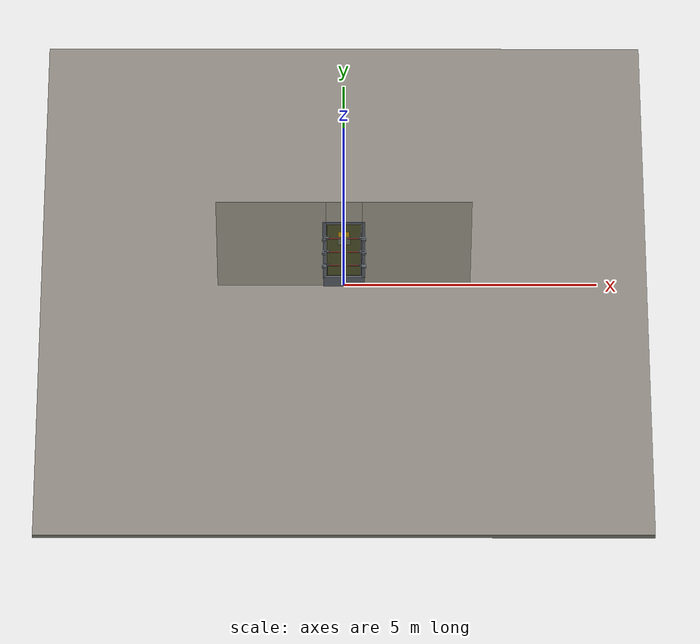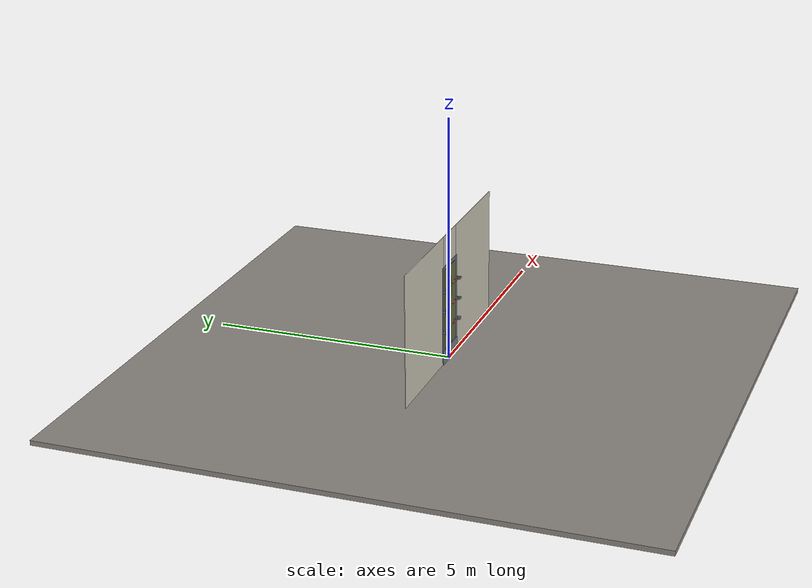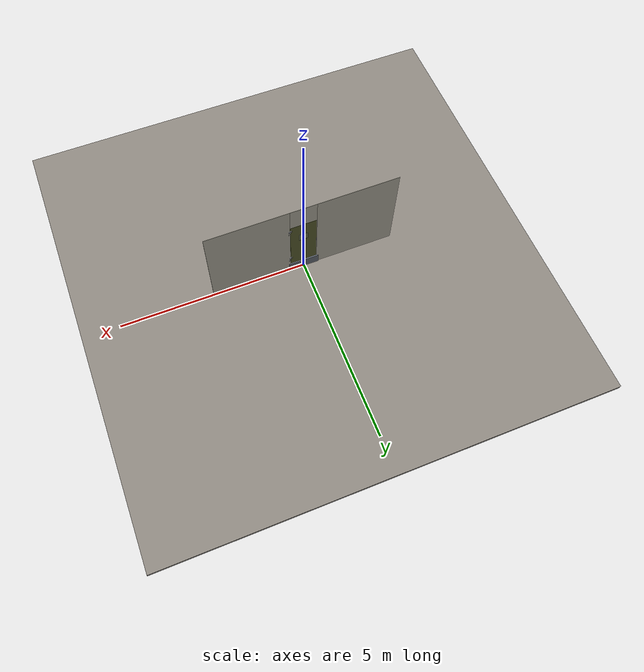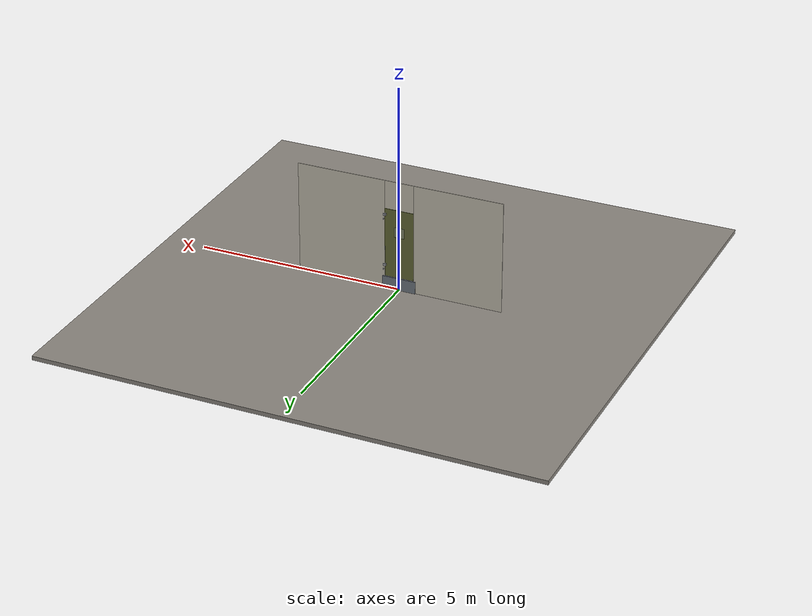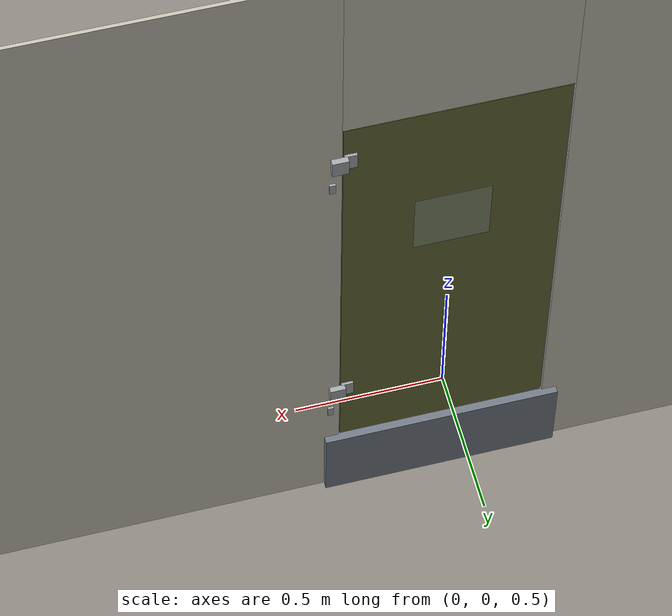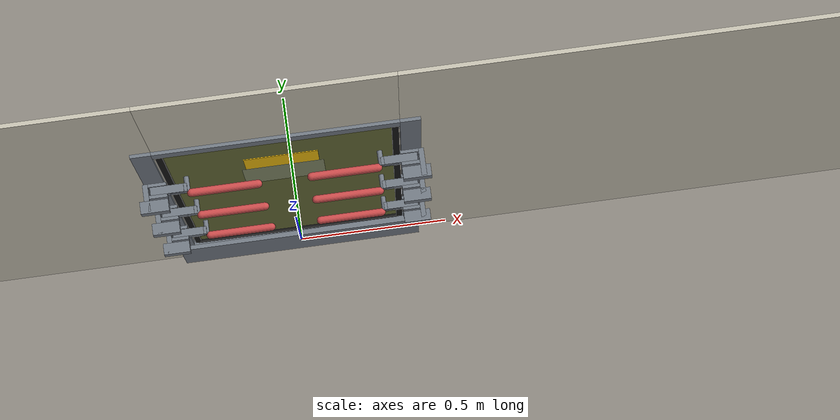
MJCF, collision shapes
<?xml version="1.0" ?>
<mujoco model="db0168_ship_watertight_full">
  <compiler angle="radian" meshdir="../../hardware" texturedir="../../textures" autolimits="true" inertiafromgeom="false"/>
  <option timestep="0.002" integrator="implicitfast" cone="elliptic" impratio="10" noslip_iterations="3">
    <flag multiccd="enable"/>
  </option>
  <size memory="16M"/>
  <default>
    <geom condim="4" solref="0.005 1" solimp="0.95 0.99 0.001"/>
    <joint solreflimit="0.005 1" solimplimit="0.95 0.99 0.001"/>
    <tendon solreflimit="0.005 1"/>
    <equality solref="0.002 1"/>
  </default>
  <visual>
    <headlight ambient="0.4 0.4 0.4" diffuse="0.7 0.7 0.7" specular="0.2 0.2 0.2"/>
    <quality shadowsize="4096"/>
    <map znear="0.01" zfar="60"/>
  </visual>
  <asset>
    <mesh name="hinge_aa6f1f959a" file="hinge_aa6f1f959a.obj"/>
    <mesh name="hinge_jamb_5a3d6f5c54" file="hinge_jamb_5a3d6f5c54.obj"/>
    <mesh name="lever_88a39579f3" file="lever_88a39579f3.obj"/>
    <material name="mat_floor" rgba="0.55 0.53 0.5 1" specular="0.2" shininess="0.15" reflectance="0"/>
    <material name="mat_wall" rgba="0.78 0.76 0.7 1" specular="0.2" shininess="0.1" reflectance="0"/>
    <material name="mat_leaf" rgba="0.4 0.42 0.22 1" specular="0.23" shininess="0.51" reflectance="0.02"/>
    <material name="mat_glass" rgba="0.85 0.9 0.92 0.3" specular="0.2" shininess="0.95" reflectance="0.1"/>
    <material name="mat_frame" rgba="0.45 0.48 0.52 1" specular="0.32" shininess="0.6" reflectance="0.08"/>
    <material name="mat_gasket" rgba="0.08 0.08 0.08 1" specular="0.2" shininess="0.1" reflectance="0"/>
    <material name="mat_op_steel_painted" rgba="0.45 0.48 0.52 1" specular="0.32" shininess="0.6" reflectance="0.08"/>
    <material name="mat_hinge" rgba="0.65 0.66 0.68 1" specular="0.74" shininess="0.5" reflectance="0.36"/>
    <material name="mat_placard" rgba="0.95 0.75 0.05 1" specular="0.2" shininess="0.5" reflectance="0"/>
    <texture name="skybox" type="skybox" builtin="gradient" rgb1="0.6 0.7 0.85" rgb2="0.9 0.92 0.95" width="256" height="256"/>
  </asset>
  <worldbody>
    <light name="sun" pos="1.5 -2.5 4" dir="-0.3 0.5 -0.8" directional="true" diffuse="0.8 0.8 0.8" specular="0.3 0.3 0.3" castshadow="true"/>
    <light name="fill" pos="-1.5 2.5 3" dir="0.3 -0.5 -0.7" directional="true" diffuse="0.35 0.35 0.4" castshadow="false"/>
    <camera name="robot_view" pos="0 -2.228125 1.628875" xyaxes="1 0 0 0 0.26963 0.962964" fovy="52"/>
    <camera name="far_view" pos="0 2.228125 1.628875" xyaxes="-1 0 0 0 -0.26963 0.962964" fovy="52"/>
    <camera name="iso" pos="-1.693375 -1.871625 1.985375" xyaxes="0.741536 -0.670913 0 0.242917 0.268487 0.932151" fovy="46"/>
    <camera name="detail_handle" pos="0.071 -0.854 0.996667" xyaxes="0.97561 0.219512 0 -0.070934 0.315262 0.94635" fovy="38"/>
    <geom name="floor" type="box" size="6 6 0.05" pos="0 0 -0.05" material="mat_floor" group="0" contype="1" conaffinity="1" friction="0.8 0.005 0.0001" density="2400"/>
    <geom name="wall_left" type="box" size="1.0725 0.006 1.35" pos="-1.4275 0 1.35" material="mat_wall" group="0" contype="1" conaffinity="1" friction="0.6 0.005 0.0001" density="800"/>
    <geom name="wall_right" type="box" size="1.0725 0.006 1.35" pos="1.4275 0 1.35" material="mat_wall" group="0" contype="1" conaffinity="1" friction="0.6 0.005 0.0001" density="800"/>
    <geom name="wall_header" type="box" size="0.355 0.006 0.345" pos="0 0 2.355" material="mat_wall" group="0" contype="1" conaffinity="1" friction="0.6 0.005 0.0001" density="800"/>
    <geom name="flange_l" type="box" size="0.03 0.006 0.915" pos="-0.385 -0.01 1.155" material="mat_frame" group="0" contype="1" conaffinity="1" friction="0.6 0.005 0.0001" solref="0.02 1" density="7850"/>
    <geom name="flange_r" type="box" size="0.03 0.006 0.915" pos="0.385 -0.01 1.155" material="mat_frame" group="0" contype="1" conaffinity="1" friction="0.6 0.005 0.0001" solref="0.02 1" density="7850"/>
    <geom name="flange_t" type="box" size="0.355 0.006 0.03" pos="0 -0.01 2.04" material="mat_frame" group="0" contype="1" conaffinity="1" friction="0.6 0.005 0.0001" solref="0.02 1" density="7850"/>
    <geom name="flange_b" type="box" size="0.355 0.006 0.03" pos="0 -0.01 0.27" material="mat_frame" group="0" contype="1" conaffinity="1" friction="0.6 0.005 0.0001" solref="0.02 1" density="7850"/>
    <geom name="coaming" type="box" size="0.405 0.03 0.15" pos="0 0 0.15" material="mat_frame" group="0" contype="1" conaffinity="1" friction="0.6 0.005 0.0001" density="7850"/>
    <geom name="cleat_0" type="box" size="0.0275 0.005 0.025" pos="-0.3765 -0.0205 0.716667" material="mat_frame" group="0" contype="1" conaffinity="1" friction="0.6 0.005 0.0001" density="7850"/>
    <geom name="cleat_0_outer" type="box" size="0.0275 0.005 0.025" pos="-0.3765 -0.0555 0.716667" material="mat_frame" group="0" contype="1" conaffinity="1" friction="0.6 0.005 0.0001" density="7850"/>
    <geom name="cleat_0_base" type="box" size="0.0425 0.018 0.025" pos="-0.3915 -0.084 0.716667" material="mat_frame" group="0" contype="1" conaffinity="1" friction="0.6 0.005 0.0001" density="7850"/>
    <geom name="cleat_0_bridge" type="box" size="0.008 0.041 0.025" pos="-0.412 -0.057 0.716667" material="mat_frame" group="0" contype="1" conaffinity="1" friction="0.6 0.005 0.0001" density="7850"/>
    <geom name="cleat_1" type="box" size="0.0275 0.005 0.025" pos="0.3785 -0.0205 0.716667" material="mat_frame" group="0" contype="1" conaffinity="1" friction="0.6 0.005 0.0001" density="7850"/>
    <geom name="cleat_1_outer" type="box" size="0.0275 0.005 0.025" pos="0.3785 -0.0555 0.716667" material="mat_frame" group="0" contype="1" conaffinity="1" friction="0.6 0.005 0.0001" density="7850"/>
    <geom name="cleat_1_base" type="box" size="0.0425 0.018 0.025" pos="0.3935 -0.084 0.716667" material="mat_frame" group="0" contype="1" conaffinity="1" friction="0.6 0.005 0.0001" density="7850"/>
    <geom name="cleat_1_bridge" type="box" size="0.008 0.041 0.025" pos="0.414 -0.057 0.716667" material="mat_frame" group="0" contype="1" conaffinity="1" friction="0.6 0.005 0.0001" density="7850"/>
    <geom name="cleat_2" type="box" size="0.0275 0.005 0.025" pos="-0.3765 -0.0205 1.15" material="mat_frame" group="0" contype="1" conaffinity="1" friction="0.6 0.005 0.0001" density="7850"/>
    <geom name="cleat_2_outer" type="box" size="0.0275 0.005 0.025" pos="-0.3765 -0.0555 1.15" material="mat_frame" group="0" contype="1" conaffinity="1" friction="0.6 0.005 0.0001" density="7850"/>
    <geom name="cleat_2_base" type="box" size="0.0425 0.018 0.025" pos="-0.3915 -0.084 1.15" material="mat_frame" group="0" contype="1" conaffinity="1" friction="0.6 0.005 0.0001" density="7850"/>
    <geom name="cleat_2_bridge" type="box" size="0.008 0.041 0.025" pos="-0.412 -0.057 1.15" material="mat_frame" group="0" contype="1" conaffinity="1" friction="0.6 0.005 0.0001" density="7850"/>
    <geom name="cleat_3" type="box" size="0.0275 0.005 0.025" pos="0.3785 -0.0205 1.15" material="mat_frame" group="0" contype="1" conaffinity="1" friction="0.6 0.005 0.0001" density="7850"/>
    <geom name="cleat_3_outer" type="box" size="0.0275 0.005 0.025" pos="0.3785 -0.0555 1.15" material="mat_frame" group="0" contype="1" conaffinity="1" friction="0.6 0.005 0.0001" density="7850"/>
    <geom name="cleat_3_base" type="box" size="0.0425 0.018 0.025" pos="0.3935 -0.084 1.15" material="mat_frame" group="0" contype="1" conaffinity="1" friction="0.6 0.005 0.0001" density="7850"/>
    <geom name="cleat_3_bridge" type="box" size="0.008 0.041 0.025" pos="0.414 -0.057 1.15" material="mat_frame" group="0" contype="1" conaffinity="1" friction="0.6 0.005 0.0001" density="7850"/>
    <geom name="cleat_4" type="box" size="0.0275 0.005 0.025" pos="-0.3765 -0.0205 1.583333" material="mat_frame" group="0" contype="1" conaffinity="1" friction="0.6 0.005 0.0001" density="7850"/>
    <geom name="cleat_4_outer" type="box" size="0.0275 0.005 0.025" pos="-0.3765 -0.0555 1.583333" material="mat_frame" group="0" contype="1" conaffinity="1" friction="0.6 0.005 0.0001" density="7850"/>
    <geom name="cleat_4_base" type="box" size="0.0425 0.018 0.025" pos="-0.3915 -0.084 1.583333" material="mat_frame" group="0" contype="1" conaffinity="1" friction="0.6 0.005 0.0001" density="7850"/>
    <geom name="cleat_4_bridge" type="box" size="0.008 0.041 0.025" pos="-0.412 -0.057 1.583333" material="mat_frame" group="0" contype="1" conaffinity="1" friction="0.6 0.005 0.0001" density="7850"/>
    <geom name="cleat_5" type="box" size="0.0275 0.005 0.025" pos="0.3785 -0.0205 1.583333" material="mat_frame" group="0" contype="1" conaffinity="1" friction="0.6 0.005 0.0001" density="7850"/>
    <geom name="cleat_5_outer" type="box" size="0.0275 0.005 0.025" pos="0.3785 -0.0555 1.583333" material="mat_frame" group="0" contype="1" conaffinity="1" friction="0.6 0.005 0.0001" density="7850"/>
    <geom name="cleat_5_base" type="box" size="0.0425 0.018 0.025" pos="0.3935 -0.084 1.583333" material="mat_frame" group="0" contype="1" conaffinity="1" friction="0.6 0.005 0.0001" density="7850"/>
    <geom name="cleat_5_bridge" type="box" size="0.008 0.041 0.025" pos="0.414 -0.057 1.583333" material="mat_frame" group="0" contype="1" conaffinity="1" friction="0.6 0.005 0.0001" density="7850"/>
    <geom name="hinge_0_jamb" type="mesh" mesh="hinge_jamb_5a3d6f5c54" pos="0.385 0.024 0.554" quat="0 0 0 1" material="mat_hinge" group="1" contype="0" conaffinity="0" density="7850"/>
    <geom name="hinge_0_jamb_lug" type="box" size="0.01 0.004 0.02" pos="0.385 0.01 0.467" material="mat_hinge" group="1" contype="0" conaffinity="0" density="7850"/>
    <geom name="hinge_1_jamb" type="mesh" mesh="hinge_jamb_5a3d6f5c54" pos="0.385 0.024 1.824" quat="0 0 0 1" material="mat_hinge" group="1" contype="0" conaffinity="0" density="7850"/>
    <geom name="hinge_1_jamb_lug" type="box" size="0.01 0.004 0.02" pos="0.385 0.01 1.737" material="mat_hinge" group="1" contype="0" conaffinity="0" density="7850"/>
    <site name="approach_point" pos="0 -1.5 0" quat="1 0 0 0" size="0.05" rgba="0.2 0.9 0.2 0.5" group="4"/>
    <site name="goal_point" pos="0 1.5 0" quat="1 0 0 0" size="0.05" rgba="0.2 0.9 0.2 0.5" group="4"/>
    <site name="door_plane_center" pos="0 0 1.155" quat="1 0 0 0" size="0.02" rgba="0.2 0.9 0.2 0.5" group="4"/>
    <body name="leaf" pos="0.355 0 0.3">
      <inertial pos="-0.339808 0.000711 0.856357" mass="73.53962" quat="0.500843 0.497535 0.502394 -0.499214" diaginertia="3.303039292 18.28491433 21.584603749"/>
      <joint name="leaf_hinge" type="hinge" axis="0 0 -1" pos="0.03 0.024 0" limited="true" range="0 2.356194" solreflimit="0.02 1" damping="0.123716" frictionloss="13.857034" armature="0.02"/>
      <geom name="leaf_slab" type="box" size="0.35 0.004 0.85" pos="-0.354 0 0.854" material="mat_leaf" group="0" contype="1" conaffinity="1" friction="0.4 0.005 0.0001" density="1"/>
      <geom name="leaf_glass_0" type="box" size="0.1225 0.0048 0.1225" pos="-0.354 0 1.1465" material="mat_glass" group="1" contype="0" conaffinity="0" density="1"/>
      <geom name="gasket_l" type="box" size="0.01 0.004 0.84" pos="-0.014 -0.008 0.854" material="mat_gasket" group="1" contype="0" conaffinity="0" density="1100"/>
      <geom name="gasket_r" type="box" size="0.01 0.004 0.84" pos="-0.694 -0.008 0.854" material="mat_gasket" group="1" contype="0" conaffinity="0" density="1100"/>
      <geom name="gasket_b" type="box" size="0.34 0.004 0.01" pos="-0.354 -0.008 0.014" material="mat_gasket" group="1" contype="0" conaffinity="0" density="1100"/>
      <geom name="gasket_t" type="box" size="0.34 0.004 0.01" pos="-0.354 -0.008 1.694" material="mat_gasket" group="1" contype="0" conaffinity="0" density="1100"/>
      <geom name="hinge_0" type="mesh" mesh="hinge_aa6f1f959a" pos="0.03 0.024 0.254" quat="0 0 0 1" material="mat_hinge" group="1" contype="0" conaffinity="0" density="7850"/>
      <geom name="hinge_0_lug_foot" type="box" size="0.02 0.0045 0.03" pos="-0.026 0.0085 0.287" material="mat_hinge" group="1" contype="0" conaffinity="0" density="7850"/>
      <geom name="hinge_0_lug" type="box" size="0.026 0.0095 0.03" pos="0.01 0.0205 0.287" material="mat_hinge" group="1" contype="0" conaffinity="0" density="7850"/>
      <geom name="hinge_1" type="mesh" mesh="hinge_aa6f1f959a" pos="0.03 0.024 1.524" quat="0 0 0 1" material="mat_hinge" group="1" contype="0" conaffinity="0" density="7850"/>
      <geom name="hinge_1_lug_foot" type="box" size="0.02 0.0045 0.03" pos="-0.026 0.0085 1.557" material="mat_hinge" group="1" contype="0" conaffinity="0" density="7850"/>
      <geom name="hinge_1_lug" type="box" size="0.026 0.0095 0.03" pos="0.01 0.0205 1.557" material="mat_hinge" group="1" contype="0" conaffinity="0" density="7850"/>
      <geom name="warning_placard" type="box" size="0.11 0.001 0.08" pos="-0.354 -0.005 1.36" material="mat_placard" group="2" contype="0" conaffinity="0" density="1000"/>
      <body name="dog_0" pos="-0.644 0 0.416667">
        <inertial pos="0.053242 -0.048054 0" mass="3.634631" quat="0.050001 0 0 0.998749" diaginertia="0.000806191 0.035241212 0.03547052"/>
        <joint name="dog_0_hinge" type="hinge" axis="0 -1 0" limited="true" range="0 1.5708" damping="0.5" frictionloss="1.5" armature="0.005"/>
        <geom name="dog_0_lever" type="mesh" mesh="lever_88a39579f3" pos="0 -0.013 0" quat="0 0 -0.707107 0.707107" material="mat_op_steel_painted" group="1" contype="0" conaffinity="0" density="7800"/>
        <geom name="dog_0_lever_col" type="capsule" size="0.0125 0.1" pos="0.11 -0.054 0" quat="0.707107 0 0.707107 0" material="mat_op_steel_painted" group="3" contype="1" conaffinity="1" rgba="0.8 0.3 0.3 0.25" friction="0.7 0.01 0.0001" density="7800"/>
        <geom name="dog_0_wedge" type="box" size="0.05 0.012 0.02" pos="-0.06 -0.038 0" material="mat_op_steel_painted" group="0" contype="1" conaffinity="1" friction="0.6 0.005 0.0001" density="7800"/>
        <geom name="dog_0_shaft" type="cylinder" size="0.008 0.025" pos="0 -0.025 0" quat="0.707107 -0.707107 0 0" material="mat_op_steel_painted" group="1" contype="0" conaffinity="0" density="7800"/>
        <geom name="dog_0_crank" type="box" size="0.026 0.012 0.018" pos="-0.026 -0.038 0" material="mat_op_steel_painted" group="1" contype="0" conaffinity="0" density="7800"/>
        <site name="dog_0_grip" pos="0.18 -0.054 0" quat="1 0 0 0" size="0.012" rgba="0.2 0.9 0.2 0.5" group="4"/>
      </body>
      <body name="dog_1" pos="-0.064 0 0.416667">
        <inertial pos="-0.053242 -0.048054 0" mass="3.634631" quat="-0.050001 0 0 0.998749" diaginertia="0.000806191 0.035241212 0.03547052"/>
        <joint name="dog_1_hinge" type="hinge" axis="0 1 0" limited="true" range="0 1.5708" damping="0.5" frictionloss="1.5" armature="0.005"/>
        <geom name="dog_1_lever" type="mesh" mesh="lever_88a39579f3" pos="0 -0.013 0" quat="0.707107 0.707107 0 0" material="mat_op_steel_painted" group="1" contype="0" conaffinity="0" density="7800"/>
        <geom name="dog_1_lever_col" type="capsule" size="0.0125 0.1" pos="-0.11 -0.054 0" quat="0.707107 0 0.707107 0" material="mat_op_steel_painted" group="3" contype="1" conaffinity="1" rgba="0.8 0.3 0.3 0.25" friction="0.7 0.01 0.0001" density="7800"/>
        <geom name="dog_1_wedge" type="box" size="0.05 0.012 0.02" pos="0.06 -0.038 0" material="mat_op_steel_painted" group="0" contype="1" conaffinity="1" friction="0.6 0.005 0.0001" density="7800"/>
        <geom name="dog_1_shaft" type="cylinder" size="0.008 0.025" pos="0 -0.025 0" quat="0.707107 -0.707107 0 0" material="mat_op_steel_painted" group="1" contype="0" conaffinity="0" density="7800"/>
        <geom name="dog_1_crank" type="box" size="0.026 0.012 0.018" pos="0.026 -0.038 0" material="mat_op_steel_painted" group="1" contype="0" conaffinity="0" density="7800"/>
        <site name="dog_1_grip" pos="-0.18 -0.054 0" quat="1 0 0 0" size="0.012" rgba="0.2 0.9 0.2 0.5" group="4"/>
      </body>
      <body name="dog_2" pos="-0.644 0 0.85">
        <inertial pos="0.053242 -0.048054 0" mass="3.634631" quat="0.050001 0 0 0.998749" diaginertia="0.000806191 0.035241212 0.03547052"/>
        <joint name="dog_2_hinge" type="hinge" axis="0 -1 0" limited="true" range="0 1.5708" damping="0.5" frictionloss="1.5" armature="0.005"/>
        <geom name="dog_2_lever" type="mesh" mesh="lever_88a39579f3" pos="0 -0.013 0" quat="0 0 -0.707107 0.707107" material="mat_op_steel_painted" group="1" contype="0" conaffinity="0" density="7800"/>
        <geom name="dog_2_lever_col" type="capsule" size="0.0125 0.1" pos="0.11 -0.054 0" quat="0.707107 0 0.707107 0" material="mat_op_steel_painted" group="3" contype="1" conaffinity="1" rgba="0.8 0.3 0.3 0.25" friction="0.7 0.01 0.0001" density="7800"/>
        <geom name="dog_2_wedge" type="box" size="0.05 0.012 0.02" pos="-0.06 -0.038 0" material="mat_op_steel_painted" group="0" contype="1" conaffinity="1" friction="0.6 0.005 0.0001" density="7800"/>
        <geom name="dog_2_shaft" type="cylinder" size="0.008 0.025" pos="0 -0.025 0" quat="0.707107 -0.707107 0 0" material="mat_op_steel_painted" group="1" contype="0" conaffinity="0" density="7800"/>
        <geom name="dog_2_crank" type="box" size="0.026 0.012 0.018" pos="-0.026 -0.038 0" material="mat_op_steel_painted" group="1" contype="0" conaffinity="0" density="7800"/>
        <site name="dog_2_grip" pos="0.18 -0.054 0" quat="1 0 0 0" size="0.012" rgba="0.2 0.9 0.2 0.5" group="4"/>
      </body>
      <body name="dog_3" pos="-0.064 0 0.85">
        <inertial pos="-0.053242 -0.048054 0" mass="3.634631" quat="-0.050001 0 0 0.998749" diaginertia="0.000806191 0.035241212 0.03547052"/>
        <joint name="dog_3_hinge" type="hinge" axis="0 1 0" limited="true" range="0 1.5708" damping="0.5" frictionloss="1.5" armature="0.005"/>
        <geom name="dog_3_lever" type="mesh" mesh="lever_88a39579f3" pos="0 -0.013 0" quat="0.707107 0.707107 0 0" material="mat_op_steel_painted" group="1" contype="0" conaffinity="0" density="7800"/>
        <geom name="dog_3_lever_col" type="capsule" size="0.0125 0.1" pos="-0.11 -0.054 0" quat="0.707107 0 0.707107 0" material="mat_op_steel_painted" group="3" contype="1" conaffinity="1" rgba="0.8 0.3 0.3 0.25" friction="0.7 0.01 0.0001" density="7800"/>
        <geom name="dog_3_wedge" type="box" size="0.05 0.012 0.02" pos="0.06 -0.038 0" material="mat_op_steel_painted" group="0" contype="1" conaffinity="1" friction="0.6 0.005 0.0001" density="7800"/>
        <geom name="dog_3_shaft" type="cylinder" size="0.008 0.025" pos="0 -0.025 0" quat="0.707107 -0.707107 0 0" material="mat_op_steel_painted" group="1" contype="0" conaffinity="0" density="7800"/>
        <geom name="dog_3_crank" type="box" size="0.026 0.012 0.018" pos="0.026 -0.038 0" material="mat_op_steel_painted" group="1" contype="0" conaffinity="0" density="7800"/>
        <site name="dog_3_grip" pos="-0.18 -0.054 0" quat="1 0 0 0" size="0.012" rgba="0.2 0.9 0.2 0.5" group="4"/>
      </body>
      <body name="dog_4" pos="-0.644 0 1.283333">
        <inertial pos="0.053242 -0.048054 0" mass="3.634631" quat="0.050001 0 0 0.998749" diaginertia="0.000806191 0.035241212 0.03547052"/>
        <joint name="dog_4_hinge" type="hinge" axis="0 -1 0" limited="true" range="0 1.5708" damping="0.5" frictionloss="1.5" armature="0.005"/>
        <geom name="dog_4_lever" type="mesh" mesh="lever_88a39579f3" pos="0 -0.013 0" quat="0 0 -0.707107 0.707107" material="mat_op_steel_painted" group="1" contype="0" conaffinity="0" density="7800"/>
        <geom name="dog_4_lever_col" type="capsule" size="0.0125 0.1" pos="0.11 -0.054 0" quat="0.707107 0 0.707107 0" material="mat_op_steel_painted" group="3" contype="1" conaffinity="1" rgba="0.8 0.3 0.3 0.25" friction="0.7 0.01 0.0001" density="7800"/>
        <geom name="dog_4_wedge" type="box" size="0.05 0.012 0.02" pos="-0.06 -0.038 0" material="mat_op_steel_painted" group="0" contype="1" conaffinity="1" friction="0.6 0.005 0.0001" density="7800"/>
        <geom name="dog_4_shaft" type="cylinder" size="0.008 0.025" pos="0 -0.025 0" quat="0.707107 -0.707107 0 0" material="mat_op_steel_painted" group="1" contype="0" conaffinity="0" density="7800"/>
        <geom name="dog_4_crank" type="box" size="0.026 0.012 0.018" pos="-0.026 -0.038 0" material="mat_op_steel_painted" group="1" contype="0" conaffinity="0" density="7800"/>
        <site name="dog_4_grip" pos="0.18 -0.054 0" quat="1 0 0 0" size="0.012" rgba="0.2 0.9 0.2 0.5" group="4"/>
      </body>
      <body name="dog_5" pos="-0.064 0 1.283333">
        <inertial pos="-0.053242 -0.048054 0" mass="3.634631" quat="-0.050001 0 0 0.998749" diaginertia="0.000806191 0.035241212 0.03547052"/>
        <joint name="dog_5_hinge" type="hinge" axis="0 1 0" limited="true" range="0 1.5708" damping="0.5" frictionloss="1.5" armature="0.005"/>
        <geom name="dog_5_lever" type="mesh" mesh="lever_88a39579f3" pos="0 -0.013 0" quat="0.707107 0.707107 0 0" material="mat_op_steel_painted" group="1" contype="0" conaffinity="0" density="7800"/>
        <geom name="dog_5_lever_col" type="capsule" size="0.0125 0.1" pos="-0.11 -0.054 0" quat="0.707107 0 0.707107 0" material="mat_op_steel_painted" group="3" contype="1" conaffinity="1" rgba="0.8 0.3 0.3 0.25" friction="0.7 0.01 0.0001" density="7800"/>
        <geom name="dog_5_wedge" type="box" size="0.05 0.012 0.02" pos="0.06 -0.038 0" material="mat_op_steel_painted" group="0" contype="1" conaffinity="1" friction="0.6 0.005 0.0001" density="7800"/>
        <geom name="dog_5_shaft" type="cylinder" size="0.008 0.025" pos="0 -0.025 0" quat="0.707107 -0.707107 0 0" material="mat_op_steel_painted" group="1" contype="0" conaffinity="0" density="7800"/>
        <geom name="dog_5_crank" type="box" size="0.026 0.012 0.018" pos="0.026 -0.038 0" material="mat_op_steel_painted" group="1" contype="0" conaffinity="0" density="7800"/>
        <site name="dog_5_grip" pos="-0.18 -0.054 0" quat="1 0 0 0" size="0.012" rgba="0.2 0.9 0.2 0.5" group="4"/>
      </body>
    </body>
  </worldbody>
  <sensor>
    <jointpos name="leaf_hinge_pos" joint="leaf_hinge"/>
    <jointvel name="leaf_hinge_vel" joint="leaf_hinge"/>
    <jointpos name="dog_0_hinge_pos" joint="dog_0_hinge"/>
    <jointvel name="dog_0_hinge_vel" joint="dog_0_hinge"/>
    <jointpos name="dog_1_hinge_pos" joint="dog_1_hinge"/>
    <jointvel name="dog_1_hinge_vel" joint="dog_1_hinge"/>
    <jointpos name="dog_2_hinge_pos" joint="dog_2_hinge"/>
    <jointvel name="dog_2_hinge_vel" joint="dog_2_hinge"/>
    <jointpos name="dog_3_hinge_pos" joint="dog_3_hinge"/>
    <jointvel name="dog_3_hinge_vel" joint="dog_3_hinge"/>
    <jointpos name="dog_4_hinge_pos" joint="dog_4_hinge"/>
    <jointvel name="dog_4_hinge_vel" joint="dog_4_hinge"/>
    <jointpos name="dog_5_hinge_pos" joint="dog_5_hinge"/>
    <jointvel name="dog_5_hinge_vel" joint="dog_5_hinge"/>
  </sensor>
</mujoco>
